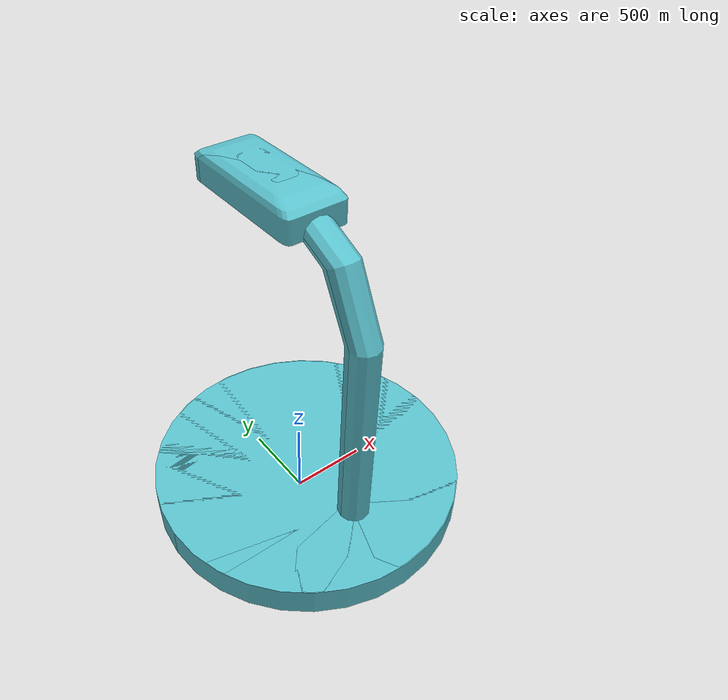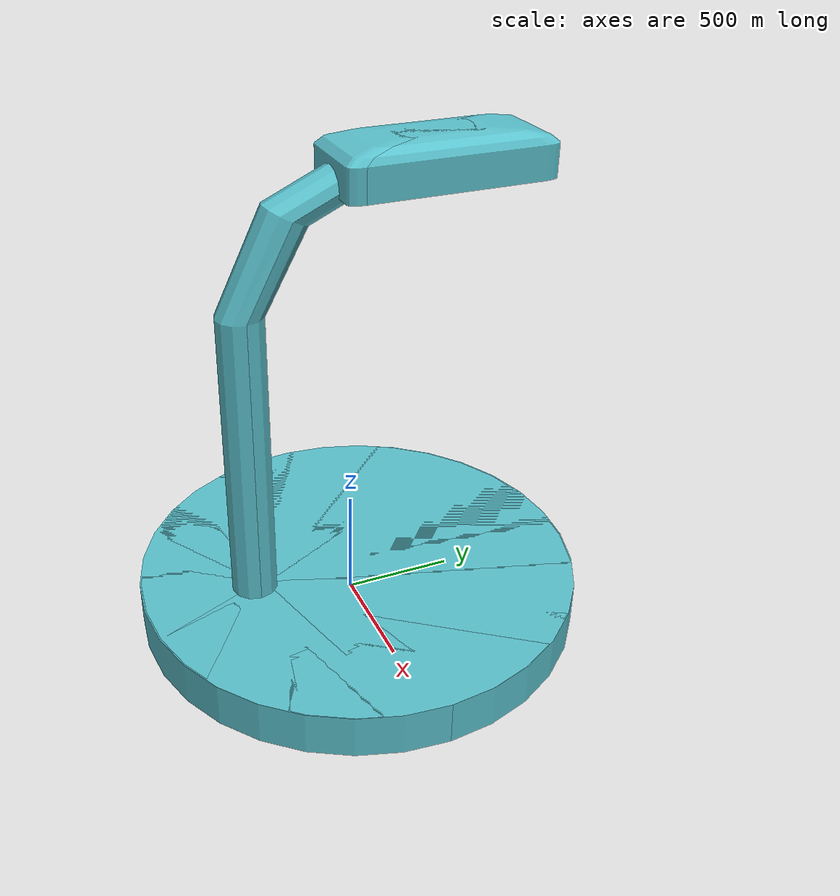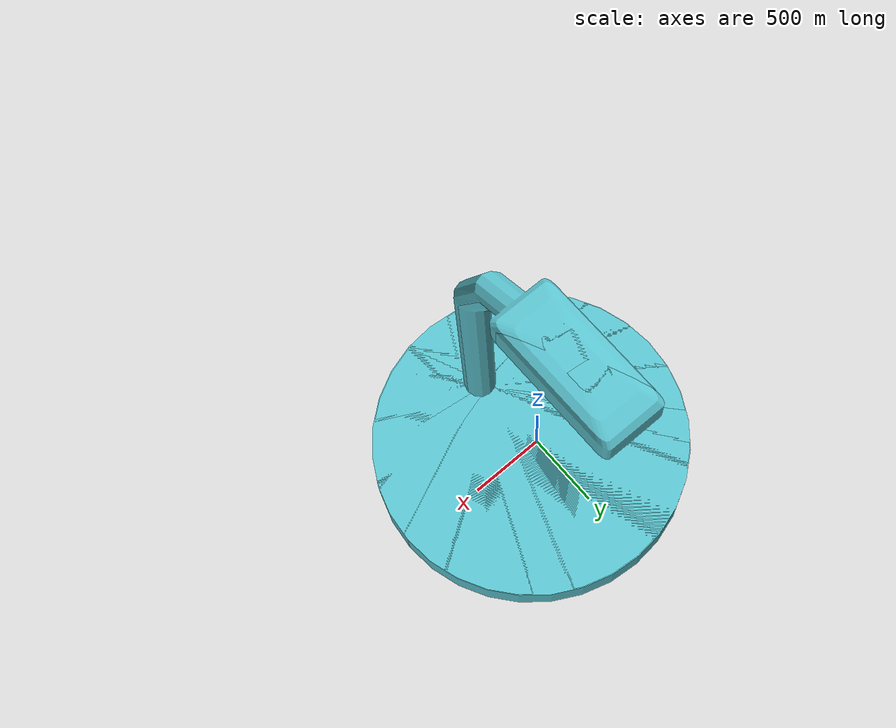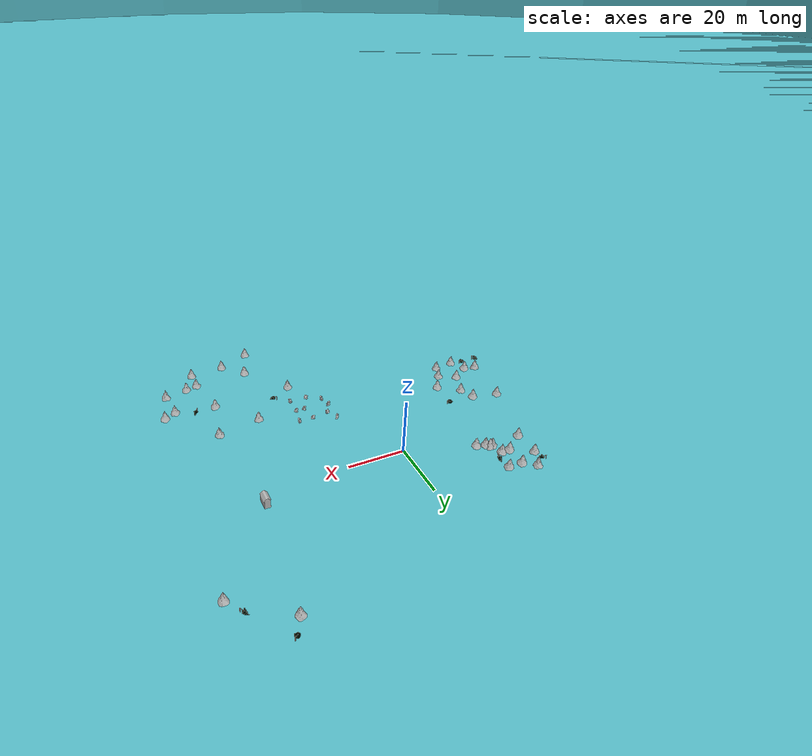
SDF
<sdf version="1.6">
 <world name="default">
  <physics name="ode_def" type="ode" default="true">
   <real_time_factor>0.2</real_time_factor>
   <real_time_update_rate>400</real_time_update_rate>
   <max_step_size>0.001</max_step_size>
   <ode><solver><type>quick</type><iters>200</iters></solver></ode>
  </physics>
  <scene>
   <origin_visual>false</origin_visual>
   <ambient>0.4 0.4 0.4 1</ambient>
   <background>224 243 249 10</background>
   <shadows>true</shadows>
   <grid>false</grid>
   <sky><clouds><speed>0</speed><humidity>0.9</humidity><mean_size>0.9</mean_size></clouds></sky>
   <fog><color>1 1 1 1</color><type>linear</type><density>.5</density><start>1</start><end>70</end></fog>
  </scene>
  <include><uri>model://sun</uri></include>
  <include>
   <static>true</static>
   <uri>model://landscape/house</uri>
   <pose>50 5 .01  0 0 3.14</pose>
   <name>house1</name>
  </include>
  <include>
   <static>true</static>
   <uri>model://landscape/lamp_post</uri>
   <pose>58 4 .01  0 0 -1.57</pose>
   <name>lamp_post</name>
  </include>
  <include>
   <static>true</static>
   <uri>model://landscape/lamp_post</uri>
   <pose>58 10 .01  0 0 -1.57</pose>
   <name>lamp_post2</name>
  </include>
  <include><uri>model://landscape/pine_tree</uri><name>tree2</name><pose>-36 24  0.01  0 0 27</pose></include>
  <include><uri>model://landscape/pine_tree</uri><name>tree3</name><pose>-26 9 0.01  0 0 147</pose></include>
  <include>
   <uri>model://landscape/pine_tree_broken</uri>
   <name>broken_tree1</name>
   <pose>-40 21  0.01  0 0 67</pose>
  </include>
  <include><uri>model://landscape/pine_tree</uri><name>tree4</name><pose>-23 8  0.01  0 0 13</pose></include>
  <include><uri>model://landscape/pine_tree</uri><name>tree6</name><pose>-39 18  0.01  0 0 29</pose></include>
  <include><uri>model://landscape/pine_tree</uri><name>tree7</name><pose>-27 21  0.01  0 0 49</pose></include>
  <include><uri>model://landscape/pine_tree</uri><name>tree8</name><pose>-29 14  0.01  0 0 171</pose></include>
  <include>
   <uri>model://landscape/pine_tree_broken</uri>
   <name>broken_tree2</name>
   <pose>-27 16  0.01  0 0 245</pose>
  </include>
  <include><uri>model://landscape/pine_tree</uri><name>tree9</name><pose>-32 21  0.01  0 0 194</pose></include>
  <include><uri>model://landscape/pine_tree</uri><name>tree11</name><pose>-28 10  0.01  0 0 97</pose></include>
  <include><uri>model://landscape/pine_tree</uri><name>tree12</name><pose>-32 14  0.01  0 0 301</pose></include>
  <include><uri>model://landscape/pine_tree</uri><name>tree13</name><pose>-27 10  0.01  0 0 288</pose></include>
  <include><uri>model://landscape/pine_tree</uri><name>tree15</name><pose>-39 9 0.01  0 0 43</pose></include>
  <include><uri>model://landscape/pine_tree</uri><name>tree100</name><pose>-32 -32 0.01 0 0  21</pose></include>
  <include>
   <uri>model://landscape/pine_tree_broken</uri>
   <name>tree101</name>
   <pose>-28 -17 0.01 0 0  96</pose>
  </include>
  <include>
   <uri>model://landscape/pine_tree</uri>
   <name>tree103</name>
   <pose>-37 -16 0.01 0 0  339</pose>
  </include>
  <include>
   <uri>model://landscape/pine_tree</uri>
   <name>tree104</name>
   <pose>-35 -21 0.01 0 0  154</pose>
  </include>
  <include>
   <uri>model://landscape/pine_tree_broken</uri>
   <name>tree105</name>
   <pose>-52 -38 0.01 0 0  196</pose>
  </include>
  <include>
   <uri>model://landscape/pine_tree</uri>
   <name>tree107</name>
   <pose>-41 -38 0.01 0 0  286</pose>
  </include>
  <include><uri>model://landscape/pine_tree</uri><name>tree108</name><pose>-38 -29 0.01 0 0  1</pose></include>
  <include><uri>model://landscape/pine_tree</uri><name>tree109</name><pose>-44 -33 0.01 0 0  56</pose></include>
  <include>
   <uri>model://landscape/pine_tree</uri>
   <name>tree111</name>
   <pose>-34 -37 0.01 0 0  204</pose>
  </include>
  <include>
   <uri>model://landscape/pine_tree</uri>
   <name>tree112</name>
   <pose>-28 -26 0.01 0 0  334</pose>
  </include>
  <include><uri>model://landscape/pine_tree</uri><name>tree114</name><pose>-48 -32 0.01 0 0  29</pose></include>
  <include>
   <uri>model://landscape/pine_tree</uri>
   <name>tree115</name>
   <pose>-46 -14 0.01 0 0  348</pose>
  </include>
  <include>
   <uri>model://landscape/pine_tree_broken</uri>
   <name>tree116</name>
   <pose>-46 -38 0.01 0 0  8</pose>
  </include>
  <include><uri>model://landscape/pine_tree</uri><name>tree202</name><pose>65 -49 0.01 0 0  154</pose></include>
  <include><uri>model://landscape/pine_tree</uri><name>tree203</name><pose>31 -75 0.01 0 0  27</pose></include>
  <include><uri>model://landscape/pine_tree</uri><name>tree204</name><pose>54 -69 0.01 0 0  209</pose></include>
  <include><uri>model://landscape/pine_tree</uri><name>tree206</name><pose>54 -62 0.01 0 0  311</pose></include>
  <include><uri>model://landscape/pine_tree</uri><name>tree207</name><pose>42 -70 0.01 0 0  347</pose></include>
  <include><uri>model://landscape/pine_tree</uri><name>tree208</name><pose>69 -47 0.01 0 0  289</pose></include>
  <include>
   <uri>model://landscape/pine_tree_broken</uri>
   <name>tree210</name>
   <pose>58 -47 0.01 0 0  345</pose>
  </include>
  <include><uri>model://landscape/pine_tree</uri><name>tree211</name><pose>51 -47 0.01 0 0  175</pose></include>
  <include><uri>model://landscape/pine_tree</uri><name>tree212</name><pose>66 -59 0.01 0 0  109</pose></include>
  <include>
   <uri>model://landscape/pine_tree_broken</uri>
   <name>tree213</name>
   <pose>30 -44 0.01 0 0  23</pose>
  </include>
  <include><uri>model://landscape/pine_tree</uri><name>tree214</name><pose>54 -31 0.01 0 0  104</pose></include>
  <include><uri>model://landscape/pine_tree</uri><name>tree216</name><pose>23 -48 0.01 0 0  348</pose></include>
  <include><uri>model://landscape/pine_tree</uri><name>tree217</name><pose>58 -61 0.01 0 0  307</pose></include>
  <include><uri>model://landscape/pine_tree</uri><name>tree218</name><pose>39 -34 0.01 0 0  161</pose></include>
  <include><uri>model://landscape/pine_tree</uri><name>tree219</name><pose>35 -63 0.01 0 0  315</pose></include>
  <include><uri>model://landscape/pine_tree</uri><name>tree300</name><pose>55 47 0.01 0 0  260</pose></include>
  <include>
   <uri>model://landscape/pine_tree_broken</uri>
   <name>tree301</name>
   <pose>58 52 0.01 0 0  260</pose>
  </include>
  <include><uri>model://landscape/pine_tree</uri><name>tree303</name><pose>72 35 0.01 0 0  46</pose></include>
  <include>
   <uri>model://landscape/pine_tree_broken</uri>
   <name>tree304</name>
   <pose>68 40 0.01 0 0  271</pose>
  </include>
  <include><uri>model://landscape/butte</uri><name>butte1</name><pose>14  -37 0.01  0 0 187</pose></include>
  <include><uri>model://landscape/butte</uri><name>butte2</name><pose>25  -34 0.01  0 0 153</pose></include>
  <include><uri>model://landscape/butte</uri><name>butte3</name><pose>19  -40 0.01  0 0 40</pose></include>
  <include><uri>model://landscape/butte</uri><name>butte4</name><pose>22  -34 0.01  0 0 59</pose></include>
  <include><uri>model://landscape/butte</uri><name>butte5</name><pose>21  -28 0.01  0 0 15</pose></include>
  <include><uri>model://landscape/butte</uri><name>butte6</name><pose>13  -33 0.01  0 0 305</pose></include>
  <include><uri>model://landscape/butte</uri><name>butte7</name><pose>15  -29 0.01  0 0 295</pose></include>
  <include><uri>model://landscape/butte</uri><name>butte8</name><pose>25  -40 0.01  0 0 313</pose></include>
  <include><uri>model://landscape/butte</uri><name>butte9</name><pose>13  -25 0.01  0 0 73</pose></include>
  <include><uri>model://landscape/butte</uri><name>butte10</name><pose>26  -28 0.01  0 0 99</pose></include>
  <include>
   <uri>model://landscape/pine_tree</uri>
   <name>tree404</name>
   <static>true</static>
   <pose>171 -20 1 0 0 0</pose>
  </include>
  <include>
   <uri>model://landscape/pine_tree</uri>
   <name>tree405</name>
   <static>true</static>
   <pose>174 -23 1 0 0 0</pose>
  </include>
 </world>
</sdf>

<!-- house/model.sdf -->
<sdf version="1.6">

  <model name="house">
      <pose>0 0 0  0 0 0</pose>
      <static>false</static>
      <link name="house">

        <inertial>
          <mass>100</mass>
        </inertial>

        <collision name="collision">
          <pose>0 0 1.85 0 0 0</pose>
          <geometry>
          <box>
            <size>2.35 4 3.7</size>
          </box>
          </geometry>
        </collision>

        <visual name="visual">
          <geometry>
            <mesh>
              <uri>model://landscape/house/meshes/house.dae</uri>
            </mesh>
          </geometry>
          <material>
            <script>
              <uri>model://landscape/house/materials/scripts/house.material</uri>
              <name>house</name>
            </script>
          </material>
        </visual>
      </link>
    </model>
</sdf>

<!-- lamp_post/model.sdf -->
<sdf version="1.5">
  <model name="Lamp Post">
    <static>true</static>
    <link name="link">
      <collision name="collision">
        <pose>0 0 1.5 0 0 0</pose>
        <geometry>
          <box>
            <size>0.2 0.2 3</size>
          </box>
        </geometry>
      </collision>
      <visual name="visual">
        <geometry>
          <mesh>
            <uri>model://lamp_post/meshes/lamp_post.dae</uri>
            <scale>2 2 2</scale>
          </mesh>
        </geometry>
      </visual>
    </link>
  </model>
</sdf>

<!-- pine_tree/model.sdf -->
<sdf version="1.6">
  <model name="pine_tree">
    <static>true</static>
    <link name="link">
      <collision name="collision">
        <pose>0 0 2 0 0 0</pose>

        <geometry>
          <box>
            <size>0.5 0.5 4</size>
          </box>
        </geometry>
      </collision>
      <visual name="branch">
        <geometry>
          <mesh>
            <uri>model://landscape/pine_tree/meshes/pine_tree.dae</uri>
            <submesh>
              <name>Branch</name>
            </submesh>
          </mesh>
        </geometry>
        <material>
          <script>
            <uri>model://landscape/pine_tree/materials/scripts/</uri>
            <uri>model://landscape/pine_tree/materials/textures/</uri>
            <name>PineTree/Branch</name>
          </script>
        </material>
      </visual>

      <visual name="bark">
        <geometry>
          <mesh>
            <uri>model://landscape/pine_tree/meshes/pine_tree.dae</uri>
            <submesh>
              <name>Bark</name>
            </submesh>
          </mesh>
        </geometry>
        <material>
          <script>
            <uri>model://landscape/pine_tree/materials/scripts/</uri>
            <uri>model://landscape/pine_tree/materials/textures/</uri>
            <name>PineTree/Bark</name>
          </script>
        </material>
      </visual>
    </link>
  </model>
</sdf>

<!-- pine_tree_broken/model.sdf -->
<sdf version="1.6">
  <model name="pine_tree_broken">
    <static>true</static>
    <link name="link">
      <collision name="collision">
        <geometry>
          <box>
            <size>0.6 2.5 1.47</size>
          </box>
        </geometry>
      </collision>
      <visual name="branch">
        <geometry>
          <mesh>
            <uri>model://landscape/pine_tree_broken/meshes/pine_tree_broken.dae</uri>
            <submesh>
              <name>Branch</name>
            </submesh>
          </mesh>
        </geometry>
        <material>
          <script>
            <uri>model://landscape/pine_tree_broken/materials/scripts/</uri>
            <uri>model://landscape/pine_tree_broken/materials/textures/</uri>
            <name>PineTree/Branch</name>
          </script>
        </material>
      </visual>

      <visual name="bark">
        <geometry>
          <mesh>
            <uri>model://landscape/pine_tree_broken/meshes/pine_tree_broken.dae</uri>
            <submesh>
              <name>Bark</name>
            </submesh>
          </mesh>
        </geometry>
        <material>
          <script>
            <uri>model://landscape/pine_tree_broken/materials/scripts/</uri>
            <uri>model://landscape/pine_tree_broken/materials/textures/</uri>
            <name>PineTree/Bark</name>
          </script>
        </material>
      </visual>
    </link>
  </model>
</sdf>

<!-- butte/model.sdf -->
<sdf version="1.6">

  <model name="butte">
      <pose>0 0 0  0 0 0</pose>
      <static>true</static>
      <link name="butte">

        <collision name="collision">
          <pose>0 0 0.8 0 0 0</pose>
          <geometry>
            <box>
              <size>0.5 0.7 1.6</size>
            </box>
          </geometry>
        </collision>

        <visual name="visual">
          <geometry>
            <mesh>
              <uri>model://landscape/butte/meshes/butte.dae</uri>
              <submesh>
                <name>Butte2</name>
              </submesh>
            </mesh>
          </geometry>
          <material>
            <script>
              <uri>model://landscape/butte/materials/scripts/butte.material</uri>
              <name>butte/winter</name>
            </script>
          </material>
        </visual>
      </link>
    </model>
</sdf>
